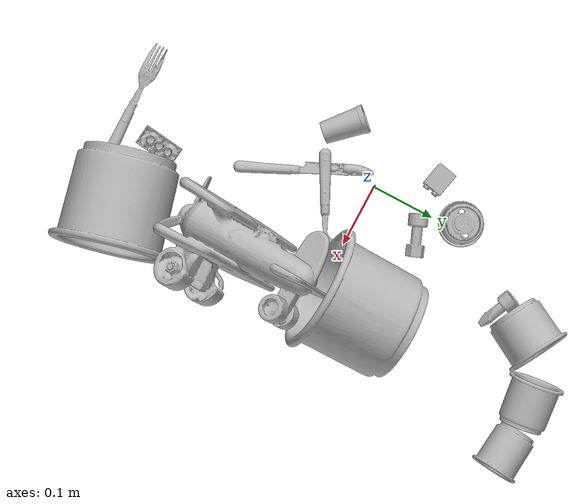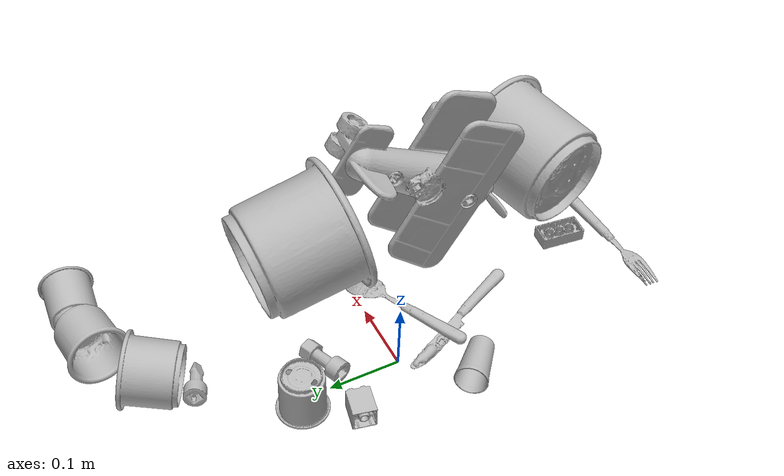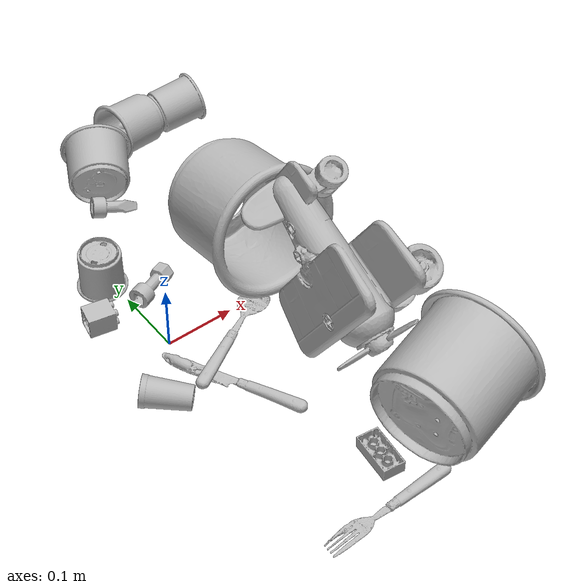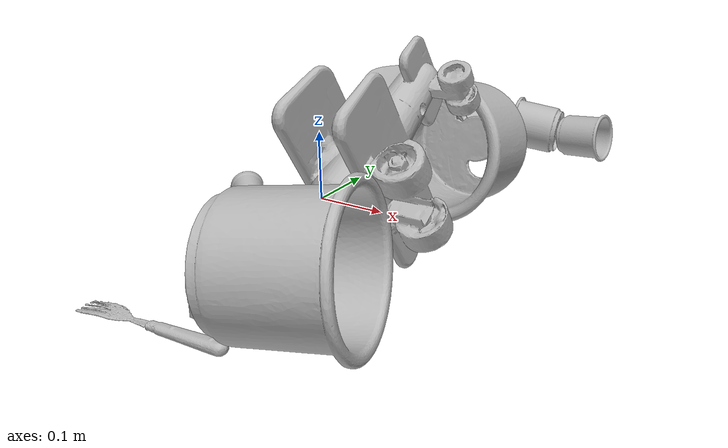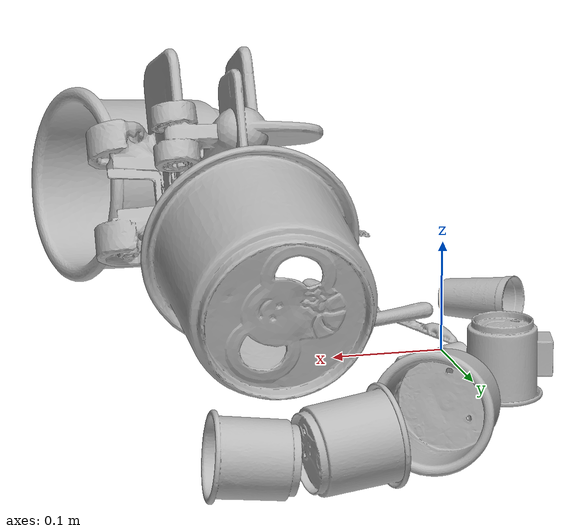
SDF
<sdf version="1.4">
  <world name="default">
    <light name="light1" type="point">
      <pose>0 0 1 0 0 0</pose>
      <diffuse>3 3 3 1</diffuse>
      <specular>3 3 3 1</specular>
    </light>
    <light name="light2" type="point">
      <pose>0 0.5 2 0 0 0</pose>
      <diffuse>1 1 1 1</diffuse>
      <specular>1 1 1 1</specular>
    </light>
    <light name="light3" type="point">
      <pose>0 0.5 2 0 0 0</pose>
      <diffuse>3 3 3 1</diffuse>
      <specular>3 3 3 1</specular>
    </light>
    <scene>
      <ambient>0.7 0.7 0.7</ambient>
    </scene>
    <model name="cup1">
      <link name="link_cup1">
        <collision name="default">
          <geometry>
            <mesh>
              <uri>model://d_cups/collision_meshes/collision.obj</uri>
              <scale>1.0 1.0 1.0</scale>
            </mesh>
          </geometry>
          <surface>
            <friction>
              <ode>
                <mu>0.5</mu>
                <mu2>0.5</mu2>
              </ode>
            </friction>
          <contact>
        <ode>
            <max_vel>0</max_vel>
            <min_depth>0.0001</min_depth>
            <kp>1e8</kp>
        </ode>
    </contact></surface>
        </collision>
        <visual name="default">
          <geometry>
            <mesh>
              <uri>model://d_cups/visual_meshes/visual.dae</uri>
              <scale>1.0 1.0 1.0</scale>
            </mesh>
          </geometry>
        </visual>
        <inertial>
          <mass>0.02583918906748295</mass>
          <pose>0.0008068039314821362 0.001911739120259881 -0.0022666507866233587 0.24011637128749466 -0.2471028358176743 0.5942765290496752</pose>
          <inertia>
            <ixx>2.1633481e-05</ixx>
            <iyy>2.1570875e-05</iyy>
            <izz>1.9581978e-05</izz>
            <ixy>0</ixy>
            <ixz>0</ixz>
            <iyz>0</iyz>
          </inertia>
        </inertial>
      </link>
      <pose>-0.012399157509207726 0.14414134621620178 0.03448905423283577 -3.1415925376459484 1.0086736944550492e-08 1.2159199960502827</pose>
    </model>
    <model name="silverware1">
      <link name="link_silverware1">
        <collision name="default">
          <geometry>
            <mesh>
              <uri>model://fork/collision_meshes/collision.obj</uri>
              <scale>1.0 1.0 1.0</scale>
            </mesh>
          </geometry>
          <surface>
            <friction>
              <ode>
                <mu>0.5</mu>
                <mu2>0.5</mu2>
              </ode>
            </friction>
          <contact>
        <ode>
            <max_vel>0</max_vel>
            <min_depth>0.0001</min_depth>
            <kp>1e8</kp>
        </ode>
    </contact></surface>
        </collision>
        <visual name="default">
          <geometry>
            <mesh>
              <uri>model://fork/visual_meshes/visual.dae</uri>
              <scale>1.0 1.0 1.0</scale>
            </mesh>
          </geometry>
        </visual>
        <inertial>
          <mass>0.019409121945500374</mass>
          <pose>-0.02957003004848957 0.00046588227269239724 0.0003218860365450382 -0.013551247621251511 -0.010977829980421018 0.014453895491116085</pose>
          <inertia>
            <ixx>6.8039935e-07</ixx>
            <iyy>5.0671635e-05</iyy>
            <izz>5.097597e-05</izz>
            <ixy>0</ixy>
            <ixz>0</ixz>
            <iyz>0</iyz>
          </inertia>
        </inertial>
      </link>
      <pose>0.06247362494468689 -0.3842146694660187 0.008278701454401016 -3.1381525075225167 -0.009088178624385088 -3.0982999305711028</pose>
    </model>
    <model name="cup2">
      <link name="link_cup2">
        <collision name="default">
          <geometry>
            <mesh>
              <uri>model://e_cups/collision_meshes/collision.obj</uri>
              <scale>1.0 1.0 1.0</scale>
            </mesh>
          </geometry>
          <surface>
            <friction>
              <ode>
                <mu>0.5</mu>
                <mu2>0.5</mu2>
              </ode>
            </friction>
          <contact>
        <ode>
            <max_vel>0</max_vel>
            <min_depth>0.0001</min_depth>
            <kp>1e8</kp>
        </ode>
    </contact></surface>
        </collision>
        <visual name="default">
          <geometry>
            <mesh>
              <uri>model://e_cups/visual_meshes/visual.dae</uri>
              <scale>1.0 1.0 1.0</scale>
            </mesh>
          </geometry>
        </visual>
        <inertial>
          <mass>0.044056184589862823</mass>
          <pose>0.0011355748865753412 0.0028797839768230915 -0.0038829699624329805 0.6952404811842238 0.0876797234541652 -0.5235249298074676</pose>
          <inertia>
            <ixx>3.8846523e-05</ixx>
            <iyy>4.060018e-05</iyy>
            <izz>3.714177e-05</izz>
            <ixy>0</ixy>
            <ixz>0</ixz>
            <iyz>0</iyz>
          </inertia>
        </inertial>
      </link>
      <pose>0.260139524936676 0.36464008688926697 0.03498557582497597 1.4706109860065626 -0.40889548224924194 1.5213893803492378</pose>
    </model>
    <model name="silverware2">
      <link name="link_silverware2">
        <collision name="default">
          <geometry>
            <mesh>
              <uri>model://knife/collision_meshes/collision.obj</uri>
              <scale>1.0 1.0 1.0</scale>
            </mesh>
          </geometry>
          <surface>
            <friction>
              <ode>
                <mu>0.5</mu>
                <mu2>0.5</mu2>
              </ode>
            </friction>
          <contact>
        <ode>
            <max_vel>0</max_vel>
            <min_depth>0.0001</min_depth>
            <kp>1e8</kp>
        </ode>
    </contact></surface>
        </collision>
        <visual name="default">
          <geometry>
            <mesh>
              <uri>model://knife/visual_meshes/visual.dae</uri>
              <scale>1.0 1.0 1.0</scale>
            </mesh>
          </geometry>
        </visual>
        <inertial>
          <mass>0.018338654190301895</mass>
          <pose>-0.02378525212407112 0.00152751209679991 5.062017953605391e-05 0.07305878484845407 0.017248414361503102 -0.007409825003193847</pose>
          <inertia>
            <ixx>5.2052525e-07</ixx>
            <iyy>7.045415e-05</iyy>
            <izz>7.062178e-05</izz>
            <ixy>0</ixy>
            <ixz>0</ixz>
            <iyz>0</iyz>
          </inertia>
        </inertial>
      </link>
      <pose>0.02617317996919155 -0.10817336291074753 0.005897664465010166 3.02218462922817 0.0416793011285292 2.026114188940167</pose>
    </model>
    <model name="cup3">
      <link name="link_cup3">
        <collision name="default">
          <geometry>
            <mesh>
              <uri>model://g_cups/collision_meshes/collision.obj</uri>
              <scale>1.0 1.0 1.0</scale>
            </mesh>
          </geometry>
          <surface>
            <friction>
              <ode>
                <mu>0.5</mu>
                <mu2>0.5</mu2>
              </ode>
            </friction>
          <contact>
        <ode>
            <max_vel>0</max_vel>
            <min_depth>0.0001</min_depth>
            <kp>1e8</kp>
        </ode>
    </contact></surface>
        </collision>
        <visual name="default">
          <geometry>
            <mesh>
              <uri>model://g_cups/visual_meshes/visual.dae</uri>
              <scale>1.0 1.0 1.0</scale>
            </mesh>
          </geometry>
        </visual>
        <inertial>
          <mass>0.07798270881175995</mass>
          <pose>-0.0007946274126879871 -4.206407902529463e-05 -0.0021329382434487343 -0.21383467808934026 -0.31409923984197585 0.31123390815877217</pose>
          <inertia>
            <ixx>9.102333e-05</ixx>
            <iyy>9.0713715e-05</iyy>
            <izz>9.428446e-05</izz>
            <ixy>0</ixy>
            <ixz>0</ixz>
            <iyz>0</iyz>
          </inertia>
        </inertial>
      </link>
      <pose>0.1810671091079712 0.3617023229598999 0.03984784707427025 -0.9295534752647391 -1.3954826756535272 1.068292392167667</pose>
    </model>
    <model name="silverware3">
      <link name="link_silverware3">
        <collision name="default">
          <geometry>
            <mesh>
              <uri>model://spoon/collision_meshes/collision.obj</uri>
              <scale>1.0 1.0 1.0</scale>
            </mesh>
          </geometry>
          <surface>
            <friction>
              <ode>
                <mu>0.5</mu>
                <mu2>0.5</mu2>
              </ode>
            </friction>
          <contact>
        <ode>
            <max_vel>0</max_vel>
            <min_depth>0.0001</min_depth>
            <kp>1e8</kp>
        </ode>
    </contact></surface>
        </collision>
        <visual name="default">
          <geometry>
            <mesh>
              <uri>model://spoon/visual_meshes/visual.dae</uri>
              <scale>1.0 1.0 1.0</scale>
            </mesh>
          </geometry>
        </visual>
        <inertial>
          <mass>0.03767607361078262</mass>
          <pose>-0.005526314023882151 -0.00160341733135283 -0.0007271650829352438 0.035216427360727776 -0.03906582911385382 0.006150613897789847</pose>
          <inertia>
            <ixx>2.095604e-06</ixx>
            <iyy>0.00014335623</iyy>
            <izz>0.00014438969</izz>
            <ixy>0</ixy>
            <ixz>0</ixz>
            <iyz>0</iyz>
          </inertia>
        </inertial>
      </link>
      <pose>0.07231710851192474 -0.04830888658761978 0.012492785230278969 3.1415106635898766 -0.03740546908537254 0.49463585231192786</pose>
    </model>
    <model name="cup4">
      <link name="link_cup4">
        <collision name="default">
          <geometry>
            <mesh>
              <uri>model://i_cups/collision_meshes/collision.obj</uri>
              <scale>2.0 2.0 2.0</scale>
            </mesh>
          </geometry>
          <surface>
            <friction>
              <ode>
                <mu>0.5</mu>
                <mu2>0.5</mu2>
              </ode>
            </friction>
          <contact>
        <ode>
            <max_vel>0</max_vel>
            <min_depth>0.0001</min_depth>
            <kp>1e8</kp>
        </ode>
    </contact></surface>
        </collision>
        <visual name="default">
          <geometry>
            <mesh>
              <uri>model://i_cups/visual_meshes/visual.dae</uri>
              <scale>2.0 2.0 2.0</scale>
            </mesh>
          </geometry>
        </visual>
        <inertial>
          <mass>0.5538490414619446</mass>
          <pose>0.00022480632469523698 0.00033594807609915733 -0.0017158057307824492 -0.028982964625507153 -0.039873324075769 -0.3459146585522926</pose>
          <inertia>
            <ixx>0.003067248</ixx>
            <iyy>0.003094273</iyy>
            <izz>0.0034281453</izz>
            <ixy>0</ixy>
            <ixz>0</ixz>
            <iyz>0</iyz>
          </inertia>
        </inertial>
      </link>
      <pose>0.17518477141857147 0.06713888049125671 0.09267685562372208 0.3404264900462858 1.3617614355509613 -1.225986435018712</pose>
    </model>
    <model name="cup41">
      <link name="link_cup41">
        <collision name="default">
          <geometry>
            <mesh>
              <uri>model://cup_small/collision_meshes/collision.obj</uri>
              <scale>1.0 1.0 1.0</scale>
            </mesh>
          </geometry>
          <surface>
            <friction>
              <ode>
                <mu>0.5</mu>
                <mu2>0.5</mu2>
              </ode>
            </friction>
          <contact>
        <ode>
            <max_vel>0</max_vel>
            <min_depth>0.0001</min_depth>
            <kp>1e8</kp>
        </ode>
    </contact></surface>
        </collision>
        <visual name="default">
          <geometry>
            <mesh>
              <uri>model://cup_small/visual_meshes/visual.dae</uri>
              <scale>1.0 1.0 1.0</scale>
            </mesh>
          </geometry>
        </visual>
        <inertial>
          <mass>0.014494861476123333</mass>
          <pose>0.000104824714071583 -0.0003377838584128767 -0.010742826387286186 -0.01149312034772668 -0.015280288652376739 -0.5058210166411498</pose>
          <inertia>
            <ixx>8.534352e-06</ixx>
            <iyy>8.578376e-06</iyy>
            <izz>3.853286e-06</izz>
            <ixy>0</ixy>
            <ixz>0</ixz>
            <iyz>0</iyz>
          </inertia>
        </inertial>
      </link>
      <pose>-0.05992919206619263 -0.08377370983362198 0.01985781639814377 -0.8114218484037242 1.4387597665678842 1.5693994240410125</pose>
    </model>
    <model name="cup5">
      <link name="link_cup5">
        <collision name="default">
          <geometry>
            <mesh>
              <uri>model://h_cups/collision_meshes/collision.obj</uri>
              <scale>2.0 2.0 2.0</scale>
            </mesh>
          </geometry>
          <surface>
            <friction>
              <ode>
                <mu>0.5</mu>
                <mu2>0.5</mu2>
              </ode>
            </friction>
          <contact>
        <ode>
            <max_vel>0</max_vel>
            <min_depth>0.0001</min_depth>
            <kp>1e8</kp>
        </ode>
    </contact></surface>
        </collision>
        <visual name="default">
          <geometry>
            <mesh>
              <uri>model://h_cups/visual_meshes/visual.dae</uri>
              <scale>2.0 2.0 2.0</scale>
            </mesh>
          </geometry>
        </visual>
        <inertial>
          <mass>0.5365790128707886</mass>
          <pose>-5.406028139987029e-05 0.00046037189895287156 -0.0036810787860304117 -0.02436222281077587 0.06545240855648493 0.12885003891433794</pose>
          <inertia>
            <ixx>0.002771868</ixx>
            <iyy>0.0027387904</iyy>
            <izz>0.0029069292</izz>
            <ixy>0</ixy>
            <ixz>0</ixz>
            <iyz>0</iyz>
          </inertia>
        </inertial>
      </link>
      <pose>0.2033131867647171 -0.32637229561805725 0.08465400338172913 1.4695109369273298 0.027776346534230598 1.8253638523777844</pose>
    </model>
    <model name="cup51">
      <link name="link_cup51">
        <collision name="default">
          <geometry>
            <mesh>
              <uri>model://j_cups/collision_meshes/collision.obj</uri>
              <scale>1.0 1.0 1.0</scale>
            </mesh>
          </geometry>
          <surface>
            <friction>
              <ode>
                <mu>0.5</mu>
                <mu2>0.5</mu2>
              </ode>
            </friction>
          <contact>
        <ode>
            <max_vel>0</max_vel>
            <min_depth>0.0001</min_depth>
            <kp>1e8</kp>
        </ode>
    </contact></surface>
        </collision>
        <visual name="default">
          <geometry>
            <mesh>
              <uri>model://j_cups/visual_meshes/visual.dae</uri>
              <scale>1.0 1.0 1.0</scale>
            </mesh>
          </geometry>
        </visual>
        <inertial>
          <mass>0.08643309026956558</mass>
          <pose>0.0006164878141134977 0.000539897009730339 -0.0013479007175192237 0.030303582878034346 0.03757999590477698 0.4386876701083768</pose>
          <inertia>
            <ixx>0.00012691108</ixx>
            <iyy>0.00012823076</iyy>
            <izz>0.00014630218</izz>
            <ixy>0</ixy>
            <ixz>0</ixz>
            <iyz>0</iyz>
          </inertia>
        </inertial>
      </link>
      <pose>0.08822257816791534 0.30600547790527344 0.04733774811029434 -1.360741523910672 -0.925491241210933 -0.6626598381909483</pose>
    </model>
    <model name="toy1">
      <link name="link_toy1">
        <collision name="default">
          <geometry>
            <mesh>
              <uri>model://f_lego_duplo/collision_meshes/collision.obj</uri>
              <scale>1.0 1.0 1.0</scale>
            </mesh>
          </geometry>
          <surface>
            <friction>
              <ode>
                <mu>0.5</mu>
                <mu2>0.5</mu2>
              </ode>
            </friction>
          <contact>
        <ode>
            <max_vel>0</max_vel>
            <min_depth>0.0001</min_depth>
            <kp>1e8</kp>
        </ode>
    </contact></surface>
        </collision>
        <visual name="default">
          <geometry>
            <mesh>
              <uri>model://f_lego_duplo/visual_meshes/visual.dae</uri>
              <scale>1.0 1.0 1.0</scale>
            </mesh>
          </geometry>
        </visual>
        <inertial>
          <mass>0.03726755082607269</mass>
          <pose>2.3694148694630712e-05 0.00013393144763540477 0.0018837880343198776 0.029838475432906467 -0.014425202105620092 -0.6756589304715467</pose>
          <inertia>
            <ixx>7.874838e-06</ixx>
            <iyy>7.944995e-06</iyy>
            <izz>6.8356926e-06</izz>
            <ixy>0</ixy>
            <ixz>0</ixz>
            <iyz>0</iyz>
          </inertia>
        </inertial>
      </link>
      <pose>-0.05406021699309349 0.082211934030056 0.0162030141800642 1.5543528081960654 1.5707516427311106 1.3495427903218984</pose>
    </model>
    <model name="toy2">
      <link name="link_toy2">
        <collision name="default">
          <geometry>
            <mesh>
              <uri>model://a_toy_airplane/collision_meshes/collision.obj</uri>
              <scale>1.0 1.0 1.0</scale>
            </mesh>
          </geometry>
          <surface>
            <friction>
              <ode>
                <mu>0.5</mu>
                <mu2>0.5</mu2>
              </ode>
            </friction>
          <contact>
        <ode>
            <max_vel>0</max_vel>
            <min_depth>0.0001</min_depth>
            <kp>1e8</kp>
        </ode>
    </contact></surface>
        </collision>
        <visual name="default">
          <geometry>
            <mesh>
              <uri>model://a_toy_airplane/visual_meshes/visual.dae</uri>
              <scale>1.0 1.0 1.0</scale>
            </mesh>
          </geometry>
        </visual>
        <inertial>
          <mass>2.8230273723602295</mass>
          <pose>0.025165094062685966 -0.003707324154675007 -0.0011962448479607701 -0.012016973205606891 -0.14663498091084715 0.004149146833454428</pose>
          <inertia>
            <ixx>0.010251767</ixx>
            <iyy>0.014938904</iyy>
            <izz>0.017491622</izz>
            <ixy>0</ixy>
            <ixz>0</ixz>
            <iyz>0</iyz>
          </inertia>
        </inertial>
      </link>
      <pose>0.17763076722621918 -0.12164030224084854 0.1509307324886322 1.6971104604264942 0.5383837440142926 -1.3713303027891837</pose>
    </model>
    <model name="toy3">
      <link name="link_toy3">
        <collision name="default">
          <geometry>
            <mesh>
              <uri>model://e_toy_airplane/collision_meshes/collision.obj</uri>
              <scale>1.0 1.0 1.0</scale>
            </mesh>
          </geometry>
          <surface>
            <friction>
              <ode>
                <mu>0.5</mu>
                <mu2>0.5</mu2>
              </ode>
            </friction>
          <contact>
        <ode>
            <max_vel>0</max_vel>
            <min_depth>0.0001</min_depth>
            <kp>1e8</kp>
        </ode>
    </contact></surface>
        </collision>
        <visual name="default">
          <geometry>
            <mesh>
              <uri>model://e_toy_airplane/visual_meshes/visual.dae</uri>
              <scale>1.0 1.0 1.0</scale>
            </mesh>
          </geometry>
        </visual>
        <inertial>
          <mass>0.018226178362965584</mass>
          <pose>0.00011740501213353127 -2.2482903659692965e-05 -0.011187204159796238 0.005518473613481416 0.009228340672948143 0.1504115676354622</pose>
          <inertia>
            <ixx>5.5628384e-06</ixx>
            <iyy>5.505933e-06</iyy>
            <izz>1.6718515e-06</izz>
            <ixy>0</ixy>
            <ixz>0</ixz>
            <iyz>0</iyz>
          </inertia>
        </inertial>
      </link>
      <pose>0.07974761724472046 0.25422972440719604 0.01180168054997921 -1.8789510794722075 -0.9040088682082306 -1.7176612170372638</pose>
    </model>
    <model name="toy4">
      <link name="link_toy4">
        <collision name="default">
          <geometry>
            <mesh>
              <uri>model://c_toy_airplane/collision_meshes/collision.obj</uri>
              <scale>1.0 1.0 1.0</scale>
            </mesh>
          </geometry>
          <surface>
            <friction>
              <ode>
                <mu>0.5</mu>
                <mu2>0.5</mu2>
              </ode>
            </friction>
          <contact>
        <ode>
            <max_vel>0</max_vel>
            <min_depth>0.0001</min_depth>
            <kp>1e8</kp>
        </ode>
    </contact></surface>
        </collision>
        <visual name="default">
          <geometry>
            <mesh>
              <uri>model://c_toy_airplane/visual_meshes/visual.dae</uri>
              <scale>1.0 1.0 1.0</scale>
            </mesh>
          </geometry>
        </visual>
        <inertial>
          <mass>0.025432955473661423</mass>
          <pose>-0.00023024249821901321 -4.429159048413567e-07 -0.006080531049519777 -0.006192114712999555 -0.016797950833505656 0.7654545807195076</pose>
          <inertia>
            <ixx>1.1678292e-05</ixx>
            <iyy>1.1645335e-05</iyy>
            <izz>2.7418316e-06</izz>
            <ixy>0</ixy>
            <ixz>0</ixz>
            <iyz>0</iyz>
          </inertia>
        </inertial>
      </link>
      <pose>0.03515201061964035 0.09215373545885086 0.01480175368487835 1.6220063631128898 0.9206608175255568 2.0021148788658447</pose>
    </model>
    <model name="toy5">
      <link name="link_toy5">
        <collision name="default">
          <geometry>
            <mesh>
              <uri>model://c_lego_duplo/collision_meshes/collision.obj</uri>
              <scale>1.0 1.0 1.0</scale>
            </mesh>
          </geometry>
          <surface>
            <friction>
              <ode>
                <mu>0.5</mu>
                <mu2>0.5</mu2>
              </ode>
            </friction>
          <contact>
        <ode>
            <max_vel>0</max_vel>
            <min_depth>0.0001</min_depth>
            <kp>1e8</kp>
        </ode>
    </contact></surface>
        </collision>
        <visual name="default">
          <geometry>
            <mesh>
              <uri>model://c_lego_duplo/visual_meshes/visual.dae</uri>
              <scale>1.0 1.0 1.0</scale>
            </mesh>
          </geometry>
        </visual>
        <inertial>
          <mass>0.03308485820889473</mass>
          <pose>0.00031645988929085433 0.00019464598153717816 0.0010453154100105166 -0.011520788894510418 0.005900092683279709 0.031100331745055027</pose>
          <inertia>
            <ixx>1.2731672e-05</ixx>
            <iyy>4.066954e-06</iyy>
            <izz>1.4878268e-05</izz>
            <ixy>0</ixy>
            <ixz>0</ixz>
            <iyz>0</iyz>
          </inertia>
        </inertial>
      </link>
      <pose>0.10078465938568115 -0.3185661733150482 0.011916196905076504 -3.1352485735187177 -0.0007804935942854554 3.0545391544566507</pose>
    </model>
  <physics type="ode">
      <max_contacts>50</max_contacts>
      <ode>
        <solver>
          <type>quick</type>
          <iters>75</iters>
        </solver>
        <constraints>
          <contact_max_correcting_vel>0</contact_max_correcting_vel>
          <contact_surface_layer>0</contact_surface_layer>
        </constraints>
      </ode>
    </physics></world>
</sdf>
